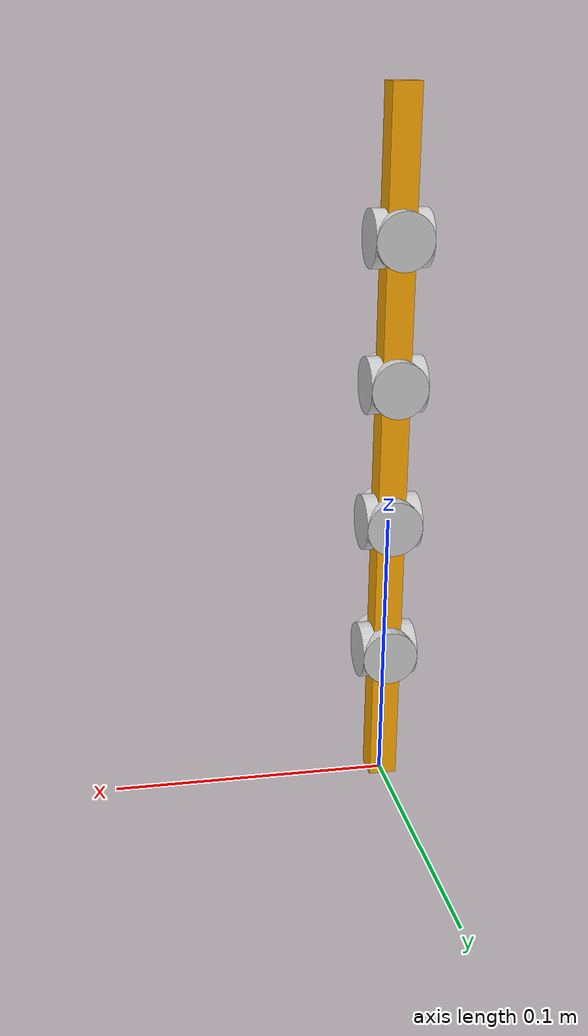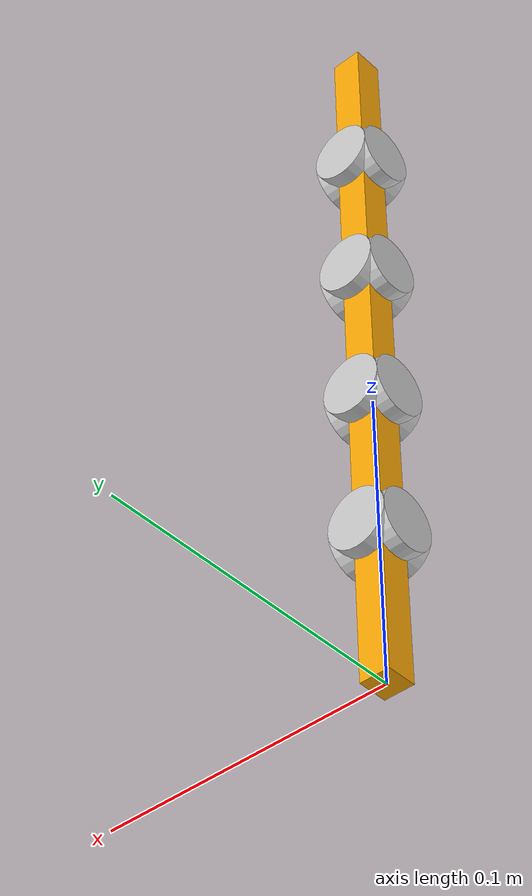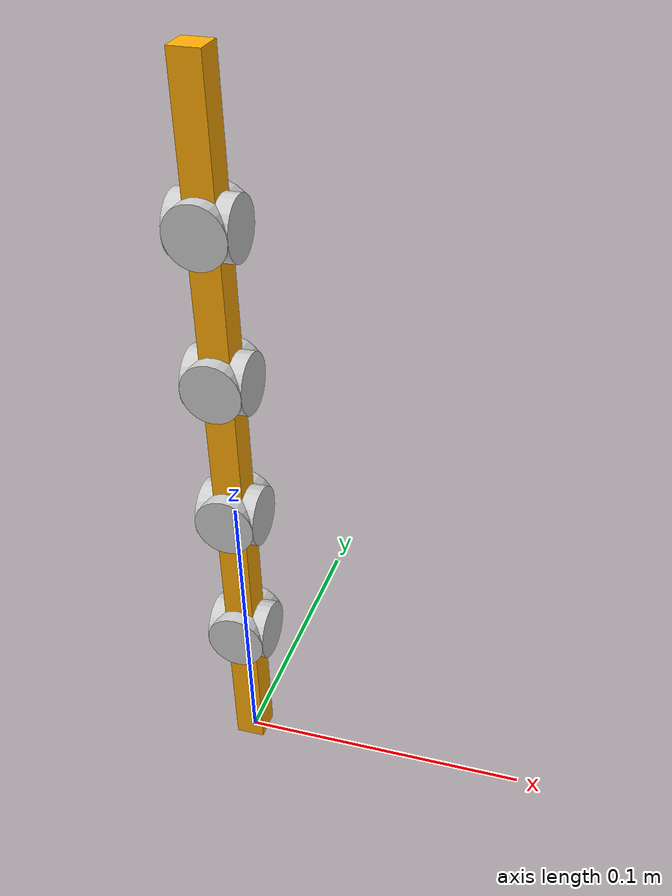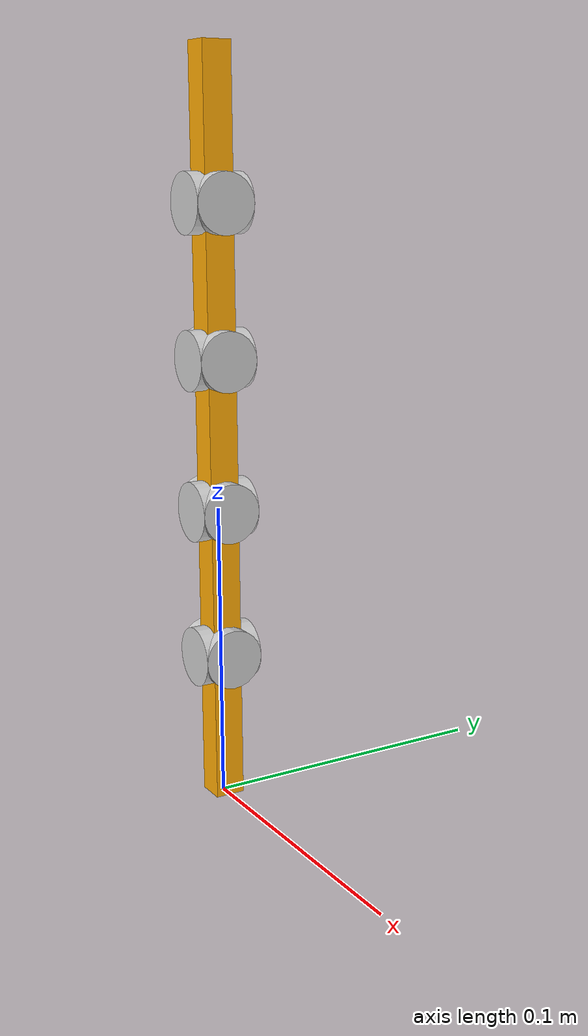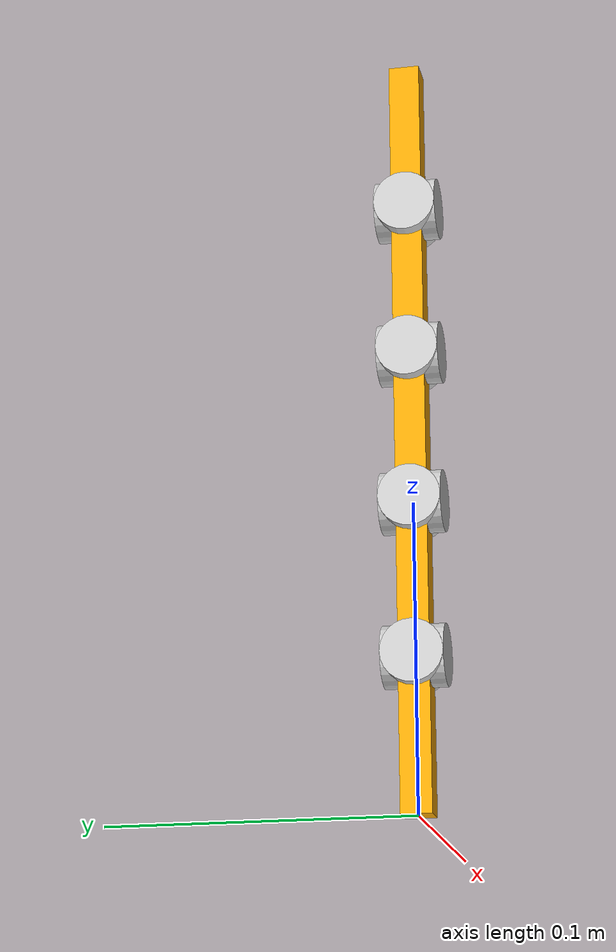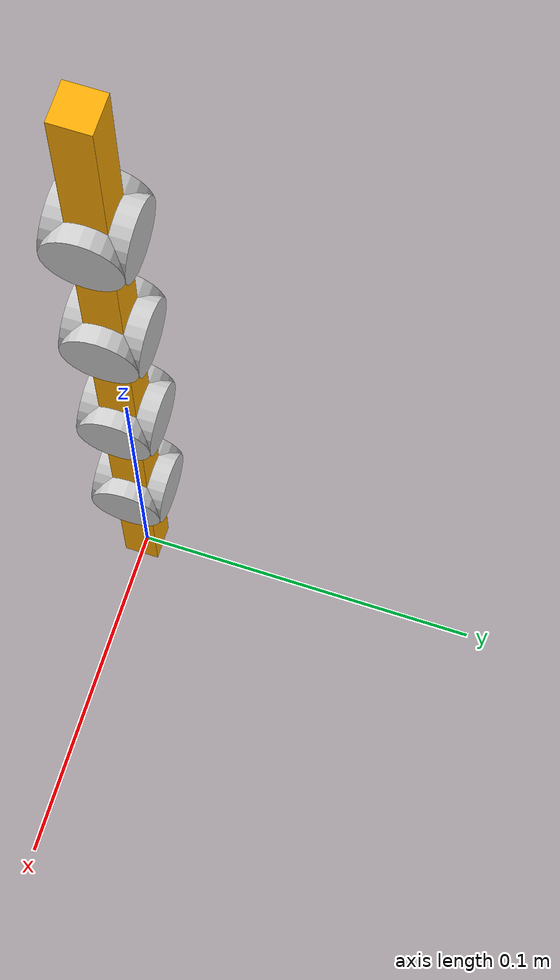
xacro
<?xml version="1.0"?>
<robot name="arm" xmlns:xacro="http://www.ros.org/wiki/xacro">

  <xacro:property name="PI" value="3.14159265359"/>

  <!-- Joints Control in Gazebo -->
  <gazebo>
    <plugin name="gazebo_ros_control" filename="libgazebo_ros_control.so"/>
  </gazebo>

  <!-- Geometrical properties -->
  <xacro:property name="link_side" value="0.01"/>
  <xacro:property name="joint_radius" value="0.01"/>
  <xacro:property name="joint_length" value="0.02"/>
  <xacro:property name="toe_length" value="0.03"/>
  <xacro:property name="foot_length" value="0.04"/>
  <xacro:property name="leg_length" value="0.40"/>
  <xacro:property name="arm_length" value="0.05"/>
  <xacro:property name="hand_length" value="0.04"/>
  <xacro:property name="finger_length" value="0.03"/>

  <!-- Materials -->
  <material name="orange">
    <color rgba="1.00 0.67 0.02 1.00"/>
  </material>

  <material name="gray">
    <color rgba="0.80 0.80 0.80 1.00"/>
  </material>

  <!-- Generates a box visual/collision/inertial -->
  <xacro:macro name="prism_vci" params="side length mass:=0.25 *origin">

    <xacro:macro name="prism_geometry">
      <xacro:insert_block name="origin"/>
      <geometry>
        <box size="${side} ${side} ${length}"/>
      </geometry>
    </xacro:macro>

    <visual>
      <xacro:prism_geometry/>
      <material name="orange"/>
    </visual>

    <collision>
      <xacro:prism_geometry/>
    </collision>

    <inertial>
      <xacro:insert_block name="origin"/>
      <mass value="${mass}"/>
      <inertia ixx="${(mass/12)*(side*side+length*length)}"
               iyy="${(mass/12)*(side*side+length*length)}"
               izz="${(mass/6)*(side*side)}"
               ixy="0" ixz="0" iyz="0"/>
    </inertial>

  </xacro:macro>

  <!-- Generates a cylinder visual/collision -->
  <xacro:macro name="cylinder_vc" params="radius length *origin">

    <xacro:macro name="cylinder_geometry">
      <xacro:insert_block name="origin"/>
      <geometry>
        <cylinder length="${length}" radius="${radius}"/>
      </geometry>
    </xacro:macro>

    <visual>
      <xacro:cylinder_geometry/>
      <material name="gray"/>
    </visual>

    <collision>
      <xacro:cylinder_geometry/>
    </collision>

  </xacro:macro>

   <!-- Generates child joint of parent -->
  <xacro:macro name="arm_joint" params="childx childy parent dist:=0 axis">

    <joint name="${parent}_${childx}_joint" type="revolute">
      <origin xyz="0 0 ${dist}" rpy="0 0 0"/>
      <parent link="${parent}"/>
      <child link="${childx}"/>
      <axis xyz="1 0 0"/>
      <limit effort="40.0"
             velocity="1.0"
             lower="${-PI}"
             upper="${PI}"/>
    </joint>

    <!-- Required for ROS control -->
    <transmission name="${parent}_${childx}_transmission">
      <type>transmission_interface/SimpleTransmission</type>
      <joint name="${parent}_${childx}_joint">
        <hardwareInterface>hardware_interface/EffortJointInterface</hardwareInterface>
      </joint>
      <actuator name="${parent}_${childx}_actuator"/>
    </transmission>

    <link name="${parent}">
    <xacro:prism_vci length="${dist}" side="${link_side}">
        <origin xyz="0 0 ${dist/2}" rpy="0 0 0"/>
      </xacro:prism_vci>
       <xacro:cylinder_vc radius="${joint_radius}" length="${joint_length}">
      <origin xyz="0 0 ${dist}" rpy="0 ${PI/2} 0"/>
      </xacro:cylinder_vc>

      <xacro:cylinder_vc radius="${joint_radius}" length="${joint_length}">
  <origin xyz="0 0 ${dist}" rpy="${PI/2} 0 0"/>

      </xacro:cylinder_vc>
    </link>

    <gazebo reference="${parent}">
      <material>Gazebo/Orange</material>
    </gazebo>

    <!-- yyyyyyyyyyyyyyyyyyyy -->
<joint name="${childx}_${childy}_joint" type="revolute">
      <origin xyz="0 0 0" rpy="0 0 0"/>
      <parent link="${childx}"/>
      <child link="${childy}"/>
      <axis xyz="0 1 0"/>
      <limit effort="40.0"
             velocity="1.0"
             lower="${-PI}"
             upper="${PI}"/>
    </joint>

    <!-- Required for ROS control -->
    <transmission name="${childx}_${childy}_transmission">
      <type>transmission_interface/SimpleTransmission</type>
      <joint name="${childx}_${childy}_joint">
        <hardwareInterface>hardware_interface/EffortJointInterface</hardwareInterface>
      </joint>
      <actuator name="${childx}_${childy}_actuator"/>
    </transmission>

    <link name="${childx}">
          <inertial>
      <origin xyz="0 0 0" rpy="0 0 0"/>
      <mass value="00011"/>
      <inertia ixx="0.00001" ixy="0.0" ixz="0.0" iyy="0.00001" iyz="0.0" izz="0.00001"/>
    </inertial>

    </link>

    <gazebo reference="${childx}">
      <material>Gazebo/Orange</material>
    </gazebo>

  </xacro:macro>

<!-- position joint -->
  <xacro:macro name="arm_joint_posi" params="childx childy parent dist:=0 axis">

    <joint name="${parent}_${childx}_joint" type="revolute">
      <origin xyz="0 0 ${dist}" rpy="0 0 0"/>
      <parent link="${parent}"/>
      <child link="${childx}"/>
      <axis xyz="1 0 0"/>
      <limit effort="40.0"
             velocity="1.0"
             lower="${-PI}"
             upper="${PI}"/>
    </joint>

    <!-- Required for ROS control -->
    <transmission name="${parent}_${childx}_transmission">
      <type>transmission_interface/SimpleTransmission</type>
      <joint name="${parent}_${childx}_joint">
        <hardwareInterface>hardware_interface/PositionJointInterface</hardwareInterface>
      </joint>
      <actuator name="${parent}_${childx}_actuator"/>
    </transmission>

    <link name="${parent}">
    <xacro:prism_vci length="${dist}" side="${link_side}">
        <origin xyz="0 0 ${dist/2}" rpy="0 0 0"/>
      </xacro:prism_vci>
       <xacro:cylinder_vc radius="${joint_radius}" length="${joint_length}">
      <origin xyz="0 0 ${dist}" rpy="0 ${PI/2} 0"/>
      </xacro:cylinder_vc>

      <xacro:cylinder_vc radius="${joint_radius}" length="${joint_length}">
  <origin xyz="0 0 ${dist}" rpy="${PI/2} 0 0"/>

      </xacro:cylinder_vc>
    </link>

    <gazebo reference="${parent}">
      <material>Gazebo/Orange</material>
    </gazebo>

    <!-- yyyyyyyyyyyyyyyyyyyy -->
<joint name="${childx}_${childy}_joint" type="revolute">
      <origin xyz="0 0 0" rpy="0 0 0"/>
      <parent link="${childx}"/>
      <child link="${childy}"/>
      <axis xyz="0 1 0"/>
      <limit effort="40.0"
             velocity="1.0"
             lower="${-PI}"
             upper="${PI}"/>
    </joint>

    <!-- Required for ROS control -->
    <transmission name="${childx}_${childy}_transmission">
      <type>transmission_interface/SimpleTransmission</type>
      <joint name="${childx}_${childy}_joint">
        <hardwareInterface>hardware_interface/PositionJointInterface</hardwareInterface>
      </joint>
      <actuator name="${childx}_${childy}_actuator"/>
    </transmission>

    <link name="${childx}">
          <inertial>
      <origin xyz="0 0 0" rpy="0 0 0"/>
      <mass value="0.25"/>
      <inertia ixx="0.00001" ixy="0.0" ixz="0.0" iyy="0.00001" iyz="0.0" izz="0.00001"/>
    </inertial>

    </link>

    <gazebo reference="${childx}">
      <material>Gazebo/Orange</material>
    </gazebo>

  </xacro:macro>

  <!-- World frame (for Gazebo) -->
 <link name="world">

    </link>

    <gazebo reference="world">
      <material>Gazebo/Orange</material>
    </gazebo>

  <!-- Arm fixed to world frame  -->
  <joint name="world_foot_joint" type="fixed">
    <parent link="world"/>
    <child link="link0"/>
  </joint>

  <!-- Joints Chain -->
   <xacro:arm_joint parent="link0" childx="link1x" childy="link1y" axis="0 0 1" dist="${arm_length}"/>
     <xacro:arm_joint_posi parent="link1y" childx="link2x" childy="link2y" axis="0 0 1" dist="${arm_length}"/>
       <xacro:arm_joint_posi parent="link2y" childx="link3x" childy="link3y" axis="0 0 1" dist="${arm_length}"/>
         <xacro:arm_joint_posi parent="link3y" childx="link4x" childy="link4y" axis="0 0 1" dist="${arm_length}"/>

  <!-- End effector -->
  <link name="link4y">
    <xacro:prism_vci length="${arm_length}" side="${link_side}">
      <origin xyz="0 0 ${arm_length/2}" rpy="0 0 0"/>
    </xacro:prism_vci>
  </link>

  <gazebo reference="link5y">
    <material>Gazebo/Red</material>
  </gazebo>

</robot>
